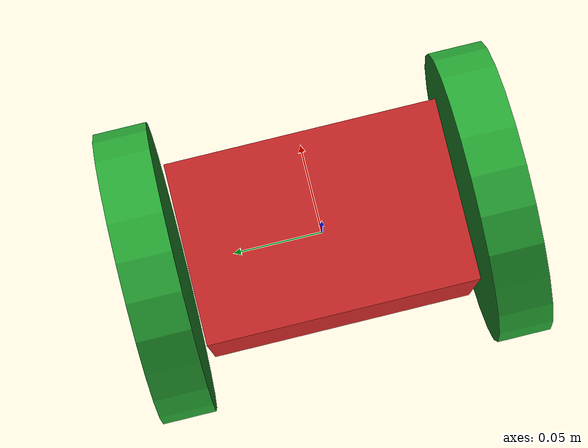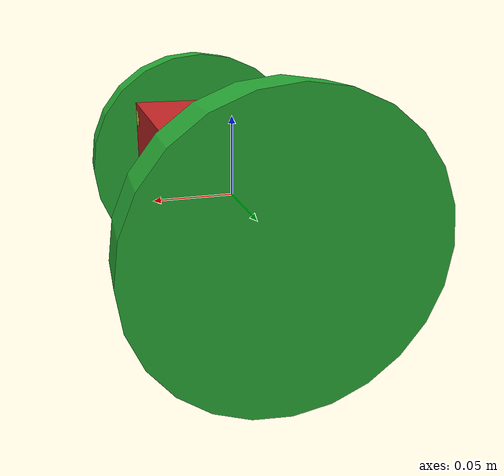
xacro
<?xml version='1.0'?>

<robot name="mdu" xmlns:xacro="http://www.ros.org/wiki/xacro" >

  <xacro:property name="main_wheel_length_mdu" value="0.05" />
  <xacro:property name="main_wheel_radius_mdu" value="0.08255" />
  <xacro:property name="main_wheel_weight_mdu" value="2.0" />

  <xacro:property name="axle_width_mdu" value="0.01" />
  <xacro:property name="axle_length_mdu" value="${0.2}"/>
  <xacro:property name="axle_height_mdu" value="0.01" />
  <xacro:property name="axle_weight_mdu" value="0.1" />

  <xacro:property name="chassis_width_mdu" value="${axle_length_mdu  - 0.05}" /> <!-- From front wheel right joint to front wheel left joint -->
 <xacro:property name="chassis_width__mdu" value="${chassis_width_mdu}" /> <!-- From front wheel right joint to front wheel left joint -->
  <xacro:property name="chassis_length_mdu" value="${0.1}" /> 	 <!-- chassis_width__mdu +0.01 From front wheel joint to back wheel joint -->
  <xacro:property name="chassis_height_mdu" value="0.1" /> 				 <!-- From front wheel joint to head rest -->
  <xacro:property name="chassis_weight_mdu" value="${15.0}" />

  <xacro:include filename="$(find mdu_description)/urdf/mdu.gazebo" />
  <xacro:include filename="$(find mdu_description)/urdf/macros.xacro" />

  <link name='chassis'>
    <inertial name="chassis_intertial">
        <origin xyz="0 0 0" rpy="0 0 0" />
        <mass value="${chassis_weight_mdu}"/>
        <box_inertia m="${chassis_weight_mdu}" x="${chassis_length_mdu}" y="${chassis_width_mdu}" z ="${chassis_height_mdu}" />
      </inertial>

    <collision name='collision'>
      <geometry>
        <box size="${chassis_length_mdu} ${chassis_width_mdu} ${chassis_height_mdu}"/>
      </geometry>
    </collision>

    <visual name='chassis_visual'>
      <origin xyz="0 0 0" rpy="0 0 0" />
      <geometry>
        <box size="${chassis_length_mdu} ${chassis_width_mdu} ${chassis_height_mdu}"/>
      </geometry>
    </visual>

    <collision name='caster_collision'>
      <origin xyz="${-(chassis_length_mdu/2 - main_wheel_radius_mdu/2)} 0 ${-main_wheel_radius_mdu/2}" rpy=" 0 0 0"/>
      <geometry>
        <sphere radius="${(main_wheel_radius_mdu/2)}"/>
      </geometry>
      <surface>
        <friction>
          <ode>
            <mu>0.5</mu>
            <mu2>0.5</mu2>
            <slip1>1.0</slip1>
            <slip2>1.0</slip2>
          </ode>
        </friction>
      </surface>
    </collision>

    <visual name='caster_visual'>
      <origin xyz="${-(chassis_length_mdu/2 - main_wheel_radius_mdu/2)} 0 ${-main_wheel_radius_mdu/2}" rpy=" 0 0 0"/>
      <geometry>
        <sphere radius="${(main_wheel_radius_mdu/2)}"/>
      </geometry>
    </visual>

  </link>
  <!--link_joint parent='footprint_mdu' child='chassis' xyz="0 0 ${main_wheel_radius_mdu}" rpy="0 0 0" type="fixed"/-->
  <wheel_mdu  lr="rear_left_wheel_mdu" tY="0.02" xyz=" 0 0 0" rpy="${-pi/2} 0 0" wheelWidth="${main_wheel_length_mdu}" wheelRadius="${main_wheel_radius_mdu}" wheelMass="${main_wheel_weight_mdu}" meshFile="wheelchair_wheel"/>
  <wheel_joint parent="chassis" child ="rear_left_wheel_mdu" xyz="0.0 ${chassis_width_mdu/2 +0.02} 0" rpy="0 0 0" axis="0 1 0"/>

  <wheel_mdu  lr="rear_right_wheel_mdu" tY="0.02" xyz=" 0 0 0" rpy="${pi/2} 0 0" wheelWidth="${main_wheel_length_mdu}" wheelRadius="${main_wheel_radius_mdu}" wheelMass="${main_wheel_weight_mdu}" meshFile="wheelchair_wheel"/>
  <wheel_joint parent="chassis" child ="rear_right_wheel_mdu" xyz="0.0 ${-chassis_width_mdu/2 - 0.02} 0" rpy="0 0 0" axis="0 1 0"/>

  <link_ name="front_right_link" xyz=" 0 0 0" rpy="0 0 0" m="${0.1}" length="${0.001}" width="${0.01}" height="${0.01}" />
  <link_joint parent='chassis' child='front_right_link' xyz="${chassis_length_mdu/2 } ${-chassis_width__mdu/2 + 0.01} ${0.082 + 0.00280 - 0.0444}" rpy="0 0 0" type="fixed"/>

</robot>

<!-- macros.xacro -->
<robot name="macro" xmlns:xacro="http://www.ros.org/wiki/xacro">

  <xacro:macro name="cylinder_inertia" params="m r h">
    <inertia  ixx="${m*(3*r*r+h*h)/12}" ixy = "0" ixz = "0"
      iyy="${m*(3*r*r+h*h)/12}" iyz = "0"
      izz="${m*r*r/2}"
    />
  </xacro:macro>

  <xacro:macro name="box_inertia" params="m x y z">
    <inertia  ixx="${m*(y*y+z*z)/12}" ixy = "0" ixz = "0"
      iyy="${m*(x*x+z*z)/12}" iyz = "0"
      izz="${m*(x*x+z*z)/12}"
    />
  </xacro:macro>

  <xacro:macro name="sphere_inertia" params="m r">
    <inertia  ixx="${2*m*r*r/5}" ixy = "0" ixz = "0"
      iyy="${2*m*r*r/5}" iyz = "0"
      izz="${2*m*r*r/5}"
    />
  </xacro:macro>

  <xacro:macro name="wheel_joint" params="parent child xyz rpy axis">
    <joint type="continuous" name="${parent}_${child}_joint">
      <origin xyz="${xyz}" rpy="${rpy}"/>
      <child link="${child}"/>
      <parent link="${parent}"/>
      <axis xyz="${axis}" rpy="0 0 0"/>
      <limit effort="100" velocity="100"/>
      <joint_properties damping="0.01" friction="0.5"/>
    </joint>
  </xacro:macro>

  <xacro:macro name="wheel_mdu" params="lr tY xyz rpy wheelWidth wheelRadius wheelMass meshFile">
    <link name="${lr}">
      <collision name="${lr}_collision">
        <origin xyz="${xyz}" rpy="${rpy}" />
        <geometry>
          <cylinder length="${wheelWidth}" radius="${wheelRadius}"/>
        </geometry>
      </collision>

      <visual name="${lr}_visual">
        <transparency>0.1</transparency>
        <origin xyz="${xyz}" rpy="${rpy}" />
        <geometry>
          <cylinder length="${wheelWidth - tY}" radius="${wheelRadius}"/>
        </geometry>

        <material name="green"/>
      </visual>

      <inertial name="${lr}_visual_intertial">
        <origin xyz="0 0 0" rpy="0 ${pi/2} ${pi/2}" />
        <mass value="${wheelMass}"/>
        <cylinder_inertia m="${wheelMass}" r="${wheelRadius}" h="${wheelWidth}"/>
      </inertial>

	    <!-- This block connects the wheel joint to an actuator (motor), which informs both
		simulation and visualization of the robot -->
    </link>
  </xacro:macro>

 <xacro:macro name="wheel__mdu" params="lr tY xyz rpy wheelWidth wheelRadius wheelMass meshFile">
    <link name="${lr}">

      <visual name="${lr}_visual">
        <transparency>0.1</transparency>
        <origin xyz="${xyz}" rpy="${rpy}" />
        <geometry>
          <cylinder length="${wheelWidth - tY}" radius="${wheelRadius}"/>
        </geometry>

        <material name="green"/>
      </visual>

      <inertial name="${lr}_visual_intertial">
        <origin xyz="0 0 0" rpy="0 ${pi/2} ${pi/2}" />
        <mass value="${wheelMass}"/>
        <cylinder_inertia m="${wheelMass}" r="${wheelRadius}" h="${wheelWidth}"/>
      </inertial>

    </link>
  </xacro:macro>

<xacro:macro name="chassis" params="name xyz rpy m chassisLength chassisWidth chassisHeight">
    <link name="${name}">
      <collision name='${name}_chassis_collision'>
        <geometry>
          <box size="${chassisLength} ${chassisWidth} ${chassisHeight}"/>
        </geometry>
      </collision>
      <visual name='${name}_visual'>
        <origin xyz="${xyz}" rpy="${rpy}" />
          <geometry>
            <box size="${chassisLength} ${chassisWidth} ${chassisHeight}"/>
        </geometry>
      </visual>
      <inertial name="${name}_intertial">
        <origin xyz="${xyz}" rpy="${rpy}" />
        <mass value="${m}"/>
        <box_inertia m="${m}" x="${chassisLength}" y="${chassisWidth}" z ="${chassisHeight}" />
      </inertial>
    </link>
  </xacro:macro>
  <xacro:macro name="link_joint" params="parent child xyz rpy type">
    <joint type="${type}" name="${parent}_${child}_joint">
      <origin xyz="${xyz}" rpy="${rpy}"/>
      <parent link="${parent}"/>
      <child link="${child}"/>

    </joint>
  </xacro:macro>

  <xacro:macro name="link_" params="name xyz rpy m length width height">
      <link name="${name}">
        <collision name='${name}_link_collision'>
          <geometry>
            <box size="${length} ${width} ${height}"/>
          </geometry>
        </collision>
        <visual name='${name}_visual'>
          <origin xyz="${xyz}" rpy="${rpy}" />
            <geometry>
              <box size="${length} ${width} ${height}"/>
          </geometry>
        </visual>
        <inertial name="${name}_intertial">
          <origin xyz="${xyz}" rpy="${rpy}" />
          <mass value="${m}"/>
          <box_inertia m="${m}" x="${length}" y="${width}" z ="${height}" />
        </inertial>
      </link>
    </xacro:macro>
    <xacro:macro name="link_joint" params="parent child xyz rpy type">
      <joint type="${type}" name="${parent}_${child}_joint">
        <origin xyz="${xyz}" rpy="${rpy}"/>
        <parent link="${parent}"/>
        <child link="${child}"/>

      </joint>
    </xacro:macro>

</robot>
